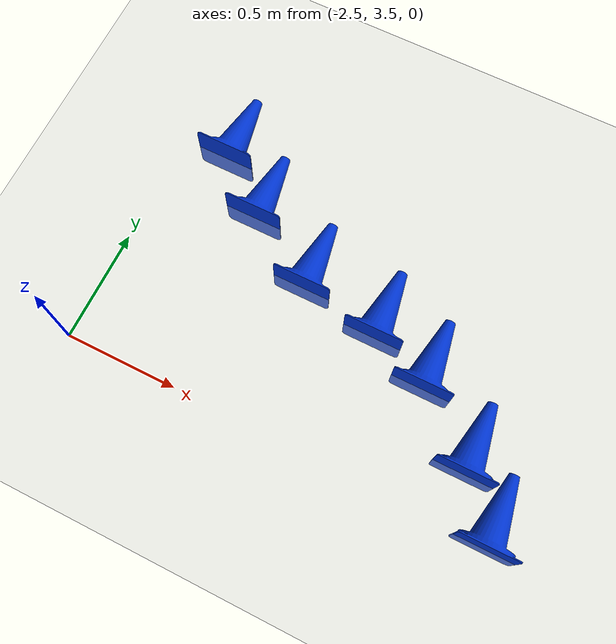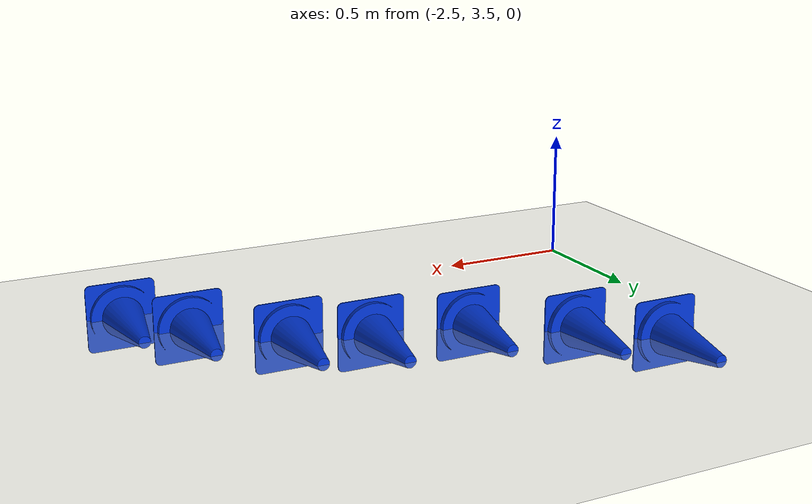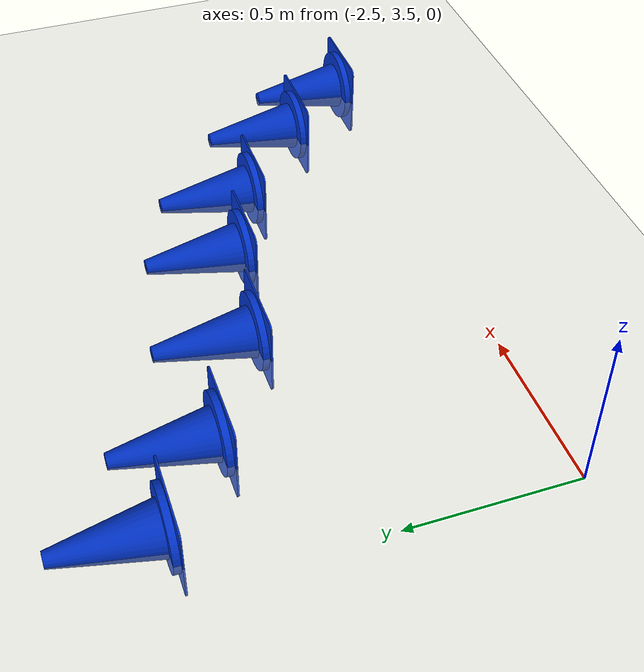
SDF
<sdf version="1.7">
 <world name="default">
  <model name="ground_plane">
   <static>1</static>
   <link name="link">
    <collision name="collision">
     <geometry><plane><normal>0 0 1</normal><size>100 100</size></plane></geometry>
     <surface><friction><ode><mu>100</mu><mu2>50</mu2></ode></friction></surface>
    </collision>
    <visual name="visual">
     <cast_shadows>0</cast_shadows>
     <geometry><plane><normal>0 0 1</normal><size>100 100</size></plane></geometry>
     <material>
      <script><uri>file://media/materials/scripts/gazebo.material</uri><name>Gazebo/Grey</name></script>
     </material>
    </visual>
   </link>
  </model>
  <model name="cone_blue_24">
   <static>1</static>
   <link name="link">
    <visual name="visual">
     <geometry><mesh><uri>model://cone_blue/meshes/cone.stl</uri><scale>0.001 0.001 0.001</scale></mesh></geometry>
     <material><ambient>0 0.2 0.8 1</ambient><diffuse>0 0.2 0.8 1</diffuse></material>
    </visual>
    <collision name="collision">
     <geometry><mesh><uri>model://cone_blue/meshes/cone.stl</uri><scale>0.001 0.001 0.001</scale></mesh></geometry>
    </collision>
    <inertial>
     <mass>0.1</mass>
     <inertia><ixx>0.0001</ixx><iyy>0.0001</iyy><izz>0.0001</izz><ixy>0</ixy><ixz>0</ixz><iyz>0</iyz></inertia>
    </inertial>
   </link>
   <pose>-0.619719 3.49818 0 0 -0 0</pose>
  </model>
  <model name="cone_blue_25">
   <static>1</static>
   <link name="link">
    <visual name="visual">
     <geometry><mesh><uri>model://cone_blue/meshes/cone.stl</uri><scale>0.001 0.001 0.001</scale></mesh></geometry>
     <material><ambient>0 0.2 0.8 1</ambient><diffuse>0 0.2 0.8 1</diffuse></material>
    </visual>
    <collision name="collision">
     <geometry><mesh><uri>model://cone_blue/meshes/cone.stl</uri><scale>0.001 0.001 0.001</scale></mesh></geometry>
    </collision>
    <inertial>
     <mass>0.1</mass>
     <inertia><ixx>0.0001</ixx><iyy>0.0001</iyy><izz>0.0001</izz><ixy>0</ixy><ixz>0</ixz><iyz>0</iyz></inertia>
    </inertial>
   </link>
   <pose>-0.805825 3.72733 0 0 -0 0</pose>
  </model>
  <model name="cone_blue_26">
   <static>1</static>
   <link name="link">
    <visual name="visual">
     <geometry><mesh><uri>model://cone_blue/meshes/cone.stl</uri><scale>0.001 0.001 0.001</scale></mesh></geometry>
     <material><ambient>0 0.2 0.8 1</ambient><diffuse>0 0.2 0.8 1</diffuse></material>
    </visual>
    <collision name="collision">
     <geometry><mesh><uri>model://cone_blue/meshes/cone.stl</uri><scale>0.001 0.001 0.001</scale></mesh></geometry>
    </collision>
    <inertial>
     <mass>0.1</mass>
     <inertia><ixx>0.0001</ixx><iyy>0.0001</iyy><izz>0.0001</izz><ixy>0</ixy><ixz>0</ixz><iyz>0</iyz></inertia>
    </inertial>
   </link>
   <pose>-1.09808 3.97022 0 0 -0 0</pose>
  </model>
  <model name="cone_blue_27">
   <static>1</static>
   <link name="link">
    <visual name="visual">
     <geometry><mesh><uri>model://cone_blue/meshes/cone.stl</uri><scale>0.001 0.001 0.001</scale></mesh></geometry>
     <material><ambient>0 0.2 0.8 1</ambient><diffuse>0 0.2 0.8 1</diffuse></material>
    </visual>
    <collision name="collision">
     <geometry><mesh><uri>model://cone_blue/meshes/cone.stl</uri><scale>0.001 0.001 0.001</scale></mesh></geometry>
    </collision>
    <inertial>
     <mass>0.1</mass>
     <inertia><ixx>0.0001</ixx><iyy>0.0001</iyy><izz>0.0001</izz><ixy>0</ixy><ixz>0</ixz><iyz>0</iyz></inertia>
    </inertial>
   </link>
   <pose>-1.36821 4.08062 0 0 -0 0</pose>
  </model>
  <model name="cone_blue_28">
   <static>1</static>
   <link name="link">
    <visual name="visual">
     <geometry><mesh><uri>model://cone_blue/meshes/cone.stl</uri><scale>0.001 0.001 0.001</scale></mesh></geometry>
     <material><ambient>0 0.2 0.8 1</ambient><diffuse>0 0.2 0.8 1</diffuse></material>
    </visual>
    <collision name="collision">
     <geometry><mesh><uri>model://cone_blue/meshes/cone.stl</uri><scale>0.001 0.001 0.001</scale></mesh></geometry>
    </collision>
    <inertial>
     <mass>0.1</mass>
     <inertia><ixx>0.0001</ixx><iyy>0.0001</iyy><izz>0.0001</izz><ixy>0</ixy><ixz>0</ixz><iyz>0</iyz></inertia>
    </inertial>
   </link>
   <pose>-1.72927 4.14752 0 0 -0 0</pose>
  </model>
  <model name="cone_blue_29">
   <static>1</static>
   <link name="link">
    <visual name="visual">
     <geometry><mesh><uri>model://cone_blue/meshes/cone.stl</uri><scale>0.001 0.001 0.001</scale></mesh></geometry>
     <material><ambient>0 0.2 0.8 1</ambient><diffuse>0 0.2 0.8 1</diffuse></material>
    </visual>
    <collision name="collision">
     <geometry><mesh><uri>model://cone_blue/meshes/cone.stl</uri><scale>0.001 0.001 0.001</scale></mesh></geometry>
    </collision>
    <inertial>
     <mass>0.1</mass>
     <inertia><ixx>0.0001</ixx><iyy>0.0001</iyy><izz>0.0001</izz><ixy>0</ixy><ixz>0</ixz><iyz>0</iyz></inertia>
    </inertial>
   </link>
   <pose>-2.06035 4.34593 0 0 -0 0</pose>
  </model>
  <model name="cone_blue_30">
   <static>1</static>
   <link name="link">
    <visual name="visual">
     <geometry><mesh><uri>model://cone_blue/meshes/cone.stl</uri><scale>0.001 0.001 0.001</scale></mesh></geometry>
     <material><ambient>0 0.2 0.8 1</ambient><diffuse>0 0.2 0.8 1</diffuse></material>
    </visual>
    <collision name="collision">
     <geometry><mesh><uri>model://cone_blue/meshes/cone.stl</uri><scale>0.001 0.001 0.001</scale></mesh></geometry>
    </collision>
    <inertial>
     <mass>0.1</mass>
     <inertia><ixx>0.0001</ixx><iyy>0.0001</iyy><izz>0.0001</izz><ixy>0</ixy><ixz>0</ixz><iyz>0</iyz></inertia>
    </inertial>
   </link>
   <pose>-2.30473 4.5487 0 0 -0 0</pose>
  </model>
  <model name="cone_yellow_19">
   <static>1</static>
   <link name="link">
    <visual name="visual">
     <geometry>
      <mesh><uri>model://cone_yellow/meshes/cone.stl</uri><scale>0.001 0.001 0.001</scale></mesh>
     </geometry>
     <material><ambient>1 0.82 0 1</ambient><diffuse>1 0.82 0 1</diffuse></material>
    </visual>
    <collision name="collision">
     <geometry>
      <mesh><uri>model://cone_yellow/meshes/cone.stl</uri><scale>0.001 0.001 0.001</scale></mesh>
     </geometry>
    </collision>
    <inertial>
     <mass>0.1</mass>
     <inertia><ixx>0.0001</ixx><iyy>0.0001</iyy><izz>0.0001</izz><ixy>0</ixy><ixz>0</ixz><iyz>0</iyz></inertia>
    </inertial>
   </link>
   <pose>-0.83399 4.28336 0 0 -0 0</pose>
  </model>
  <model name="cone_yellow_20">
   <static>1</static>
   <link name="link">
    <visual name="visual">
     <geometry>
      <mesh><uri>model://cone_yellow/meshes/cone.stl</uri><scale>0.001 0.001 0.001</scale></mesh>
     </geometry>
     <material><ambient>1 0.82 0 1</ambient><diffuse>1 0.82 0 1</diffuse></material>
    </visual>
    <collision name="collision">
     <geometry>
      <mesh><uri>model://cone_yellow/meshes/cone.stl</uri><scale>0.001 0.001 0.001</scale></mesh>
     </geometry>
    </collision>
    <inertial>
     <mass>0.1</mass>
     <inertia><ixx>0.0001</ixx><iyy>0.0001</iyy><izz>0.0001</izz><ixy>0</ixy><ixz>0</ixz><iyz>0</iyz></inertia>
    </inertial>
   </link>
   <pose>-1.19992 4.45414 0 0 -0 0</pose>
  </model>
  <model name="cone_yellow_21">
   <static>1</static>
   <link name="link">
    <visual name="visual">
     <geometry>
      <mesh><uri>model://cone_yellow/meshes/cone.stl</uri><scale>0.001 0.001 0.001</scale></mesh>
     </geometry>
     <material><ambient>1 0.82 0 1</ambient><diffuse>1 0.82 0 1</diffuse></material>
    </visual>
    <collision name="collision">
     <geometry>
      <mesh><uri>model://cone_yellow/meshes/cone.stl</uri><scale>0.001 0.001 0.001</scale></mesh>
     </geometry>
    </collision>
    <inertial>
     <mass>0.1</mass>
     <inertia><ixx>0.0001</ixx><iyy>0.0001</iyy><izz>0.0001</izz><ixy>0</ixy><ixz>0</ixz><iyz>0</iyz></inertia>
    </inertial>
   </link>
   <pose>-1.55045 4.5771 0 0 -0 0</pose>
  </model>
  <model name="cone_yellow_22">
   <static>1</static>
   <link name="link">
    <visual name="visual">
     <geometry>
      <mesh><uri>model://cone_yellow/meshes/cone.stl</uri><scale>0.001 0.001 0.001</scale></mesh>
     </geometry>
     <material><ambient>1 0.82 0 1</ambient><diffuse>1 0.82 0 1</diffuse></material>
    </visual>
    <collision name="collision">
     <geometry>
      <mesh><uri>model://cone_yellow/meshes/cone.stl</uri><scale>0.001 0.001 0.001</scale></mesh>
     </geometry>
    </collision>
    <inertial>
     <mass>0.1</mass>
     <inertia><ixx>0.0001</ixx><iyy>0.0001</iyy><izz>0.0001</izz><ixy>0</ixy><ixz>0</ixz><iyz>0</iyz></inertia>
    </inertial>
   </link>
   <pose>-1.75176 4.74814 0 0 -0 0</pose>
  </model>
 </world>
</sdf>
